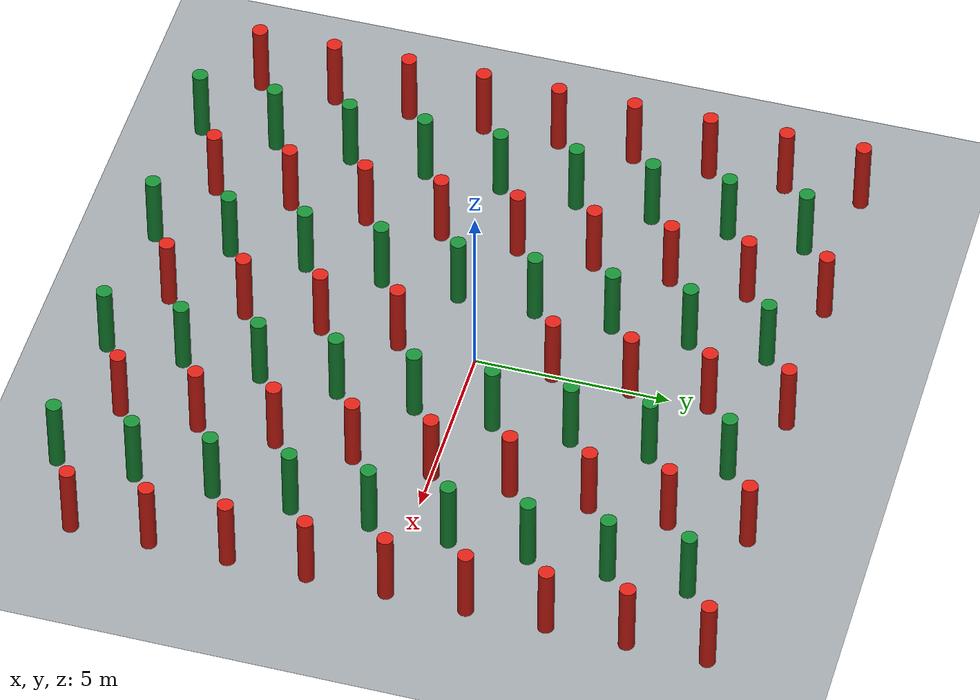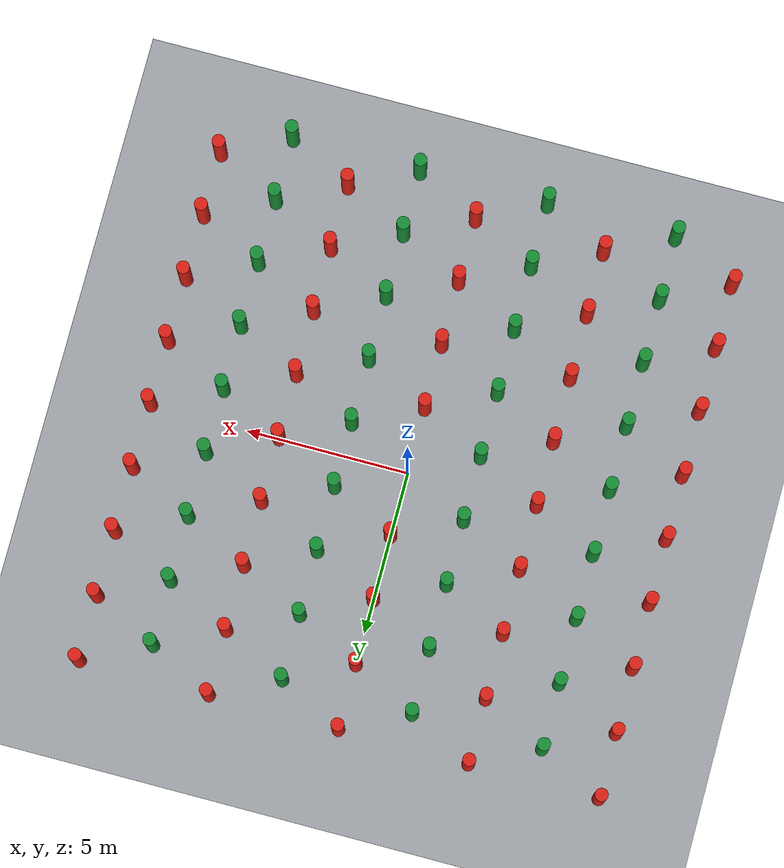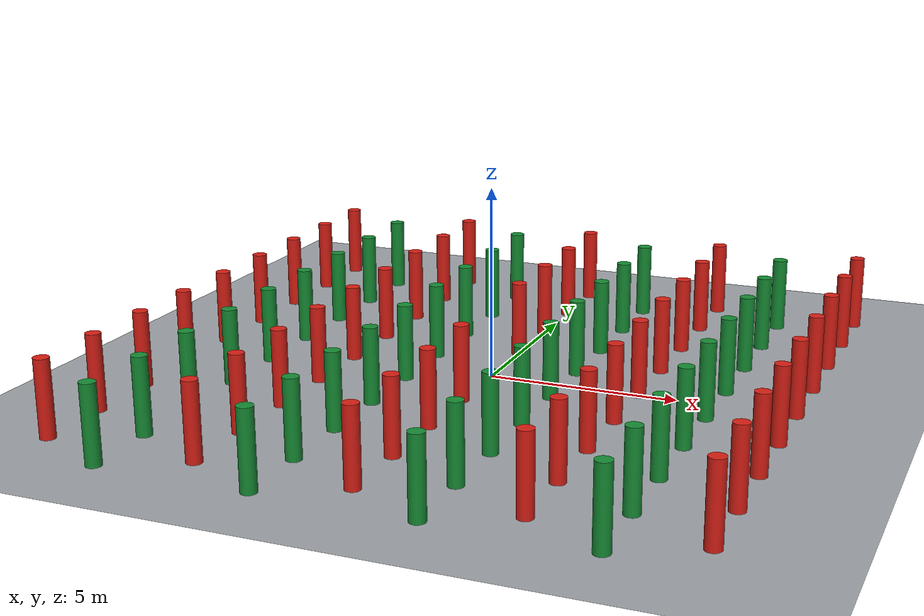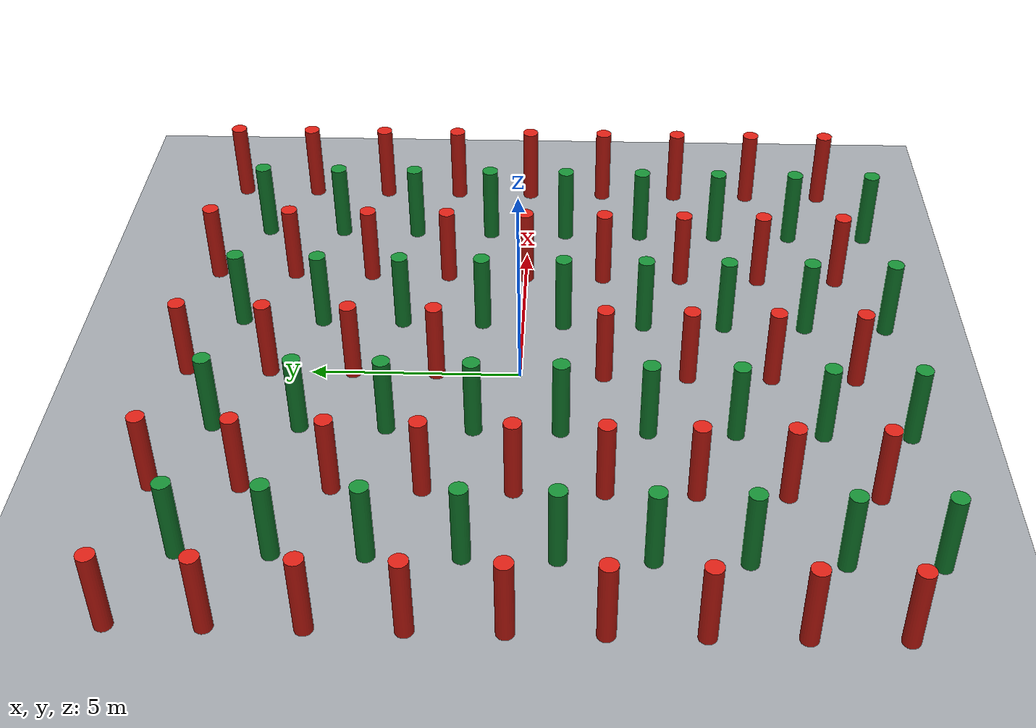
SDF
<sdf version="1.6">
 <world name="yunzong_planning_test_sunray150_assembled">
  <plugin filename="ignition-gazebo-physics-system" name="ignition::gazebo::systems::Physics"/>
  <plugin filename="ignition-gazebo-user-commands-system" name="ignition::gazebo::systems::UserCommands"/>
  <plugin filename="ignition-gazebo-scene-broadcaster-system" name="ignition::gazebo::systems::SceneBroadcaster"/>
  <plugin filename="ignition-gazebo-sensors-system" name="ignition::gazebo::systems::Sensors">
   <render_engine>ogre</render_engine>
  </plugin>
  <plugin filename="ignition-gazebo-imu-system" name="ignition::gazebo::systems::Imu"/>
  <physics name="default_physics" type="ode">
   <gravity>0 0 -9.8066</gravity>
   <ode>
    <solver>
     <type>quick</type>
     <iters>10</iters>
     <sor>1.3</sor>
     <use_dynamic_moi_rescaling>0</use_dynamic_moi_rescaling>
    </solver>
    <constraints>
     <cfm>0.00001</cfm>
     <erp>0.2</erp>
     <contact_max_correcting_vel>1000</contact_max_correcting_vel>
     <contact_surface_layer>0.01</contact_surface_layer>
    </constraints>
   </ode>
   <max_step_size>0.004</max_step_size>
   <real_time_factor>1.0</real_time_factor>
   <real_time_update_rate>250</real_time_update_rate>
   <magnetic_field>6.0e-6 2.3e-5 -4.2e-5</magnetic_field>
  </physics>
  <light type="directional" name="sun">
   <cast_shadows>false</cast_shadows>
   <pose>0 0 100 0 0 0</pose>
   <diffuse>0.8 0.8 0.8 1</diffuse>
   <specular>0.9 0.9 0.9 1</specular>
   <attenuation>
    <range>1000</range>
    <constant>0.9</constant>
    <linear>0.01</linear>
    <quadratic>0.001</quadratic>
   </attenuation>
   <direction>0.2 0.2 -0.9</direction>
  </light>
  <scene><ambient>0.75 0.75 0.75 1</ambient><background>0.82 0.86 0.9 1</background><shadows>0</shadows></scene>
  <model name="review_ground_plane">
   <static>true</static>
   <link name="link">
    <collision name="collision">
     <geometry><plane><normal>0 0 1</normal><size>22 22</size></plane></geometry>
    </collision>
    <visual name="visual">
     <geometry><plane><normal>0 0 1</normal><size>22 22</size></plane></geometry>
     <material>
      <ambient>0.62 0.64 0.66 1</ambient>
      <diffuse>0.62 0.64 0.66 1</diffuse>
      <specular>0.05 0.05 0.05 1</specular>
     </material>
    </visual>
   </link>
  </model>
  <include>
   <uri>model://cylinder_20cm</uri>
   <name>cylinder_-8_-8</name>
   <pose>-8.0 -8.0 1.0 0 0 0</pose>
   <static>true</static>
  </include>
  <include>
   <uri>model://cylinder_20cm</uri>
   <name>cylinder_-8_-6</name>
   <pose>-8.0 -6.0 1.0 0 0 0</pose>
   <static>true</static>
  </include>
  <include>
   <uri>model://cylinder_20cm</uri>
   <name>cylinder_-8_-4</name>
   <pose>-8.0 -4.0 1.0 0 0 0</pose>
   <static>true</static>
  </include>
  <include>
   <uri>model://cylinder_20cm</uri>
   <name>cylinder_-8_-2</name>
   <pose>-8.0 -2.0 1.0 0 0 0</pose>
   <static>true</static>
  </include>
  <include>
   <uri>model://cylinder_20cm</uri>
   <name>cylinder_-8_0</name>
   <pose>-8.0 0.0 1.0 0 0 0</pose>
   <static>true</static>
  </include>
  <include>
   <uri>model://cylinder_20cm</uri>
   <name>cylinder_-8_2</name>
   <pose>-8.0 2.0 1.0 0 0 0</pose>
   <static>true</static>
  </include>
  <include>
   <uri>model://cylinder_20cm</uri>
   <name>cylinder_-8_4</name>
   <pose>-8.0 4.0 1.0 0 0 0</pose>
   <static>true</static>
  </include>
  <include>
   <uri>model://cylinder_20cm</uri>
   <name>cylinder_-8_6</name>
   <pose>-8.0 6.0 1.0 0 0 0</pose>
   <static>true</static>
  </include>
  <include>
   <uri>model://cylinder_20cm</uri>
   <name>cylinder_-8_8</name>
   <pose>-8.0 8.0 1.0 0 0 0</pose>
   <static>true</static>
  </include>
  <include>
   <uri>model://cylinder_20cm_green</uri>
   <name>cylinder_-6_-9</name>
   <pose>-6.0 -9.0 1.0 0 0 0</pose>
   <static>true</static>
  </include>
  <include>
   <uri>model://cylinder_20cm_green</uri>
   <name>cylinder_-6_-7</name>
   <pose>-6.0 -7.0 1.0 0 0 0</pose>
   <static>true</static>
  </include>
  <include>
   <uri>model://cylinder_20cm_green</uri>
   <name>cylinder_-6_-5</name>
   <pose>-6.0 -5.0 1.0 0 0 0</pose>
   <static>true</static>
  </include>
  <include>
   <uri>model://cylinder_20cm_green</uri>
   <name>cylinder_-6_-3</name>
   <pose>-6.0 -3.0 1.0 0 0 0</pose>
   <static>true</static>
  </include>
  <include>
   <uri>model://cylinder_20cm_green</uri>
   <name>cylinder_-6_-1</name>
   <pose>-6.0 -1.0 1.0 0 0 0</pose>
   <static>true</static>
  </include>
  <include>
   <uri>model://cylinder_20cm_green</uri>
   <name>cylinder_-6_1</name>
   <pose>-6.0 1.0 1.0 0 0 0</pose>
   <static>true</static>
  </include>
  <include>
   <uri>model://cylinder_20cm_green</uri>
   <name>cylinder_-6_3</name>
   <pose>-6.0 3.0 1.0 0 0 0</pose>
   <static>true</static>
  </include>
  <include>
   <uri>model://cylinder_20cm_green</uri>
   <name>cylinder_-6_5</name>
   <pose>-6.0 5.0 1.0 0 0 0</pose>
   <static>true</static>
  </include>
  <include>
   <uri>model://cylinder_20cm_green</uri>
   <name>cylinder_-6_7</name>
   <pose>-6.0 7.0 1.0 0 0 0</pose>
   <static>true</static>
  </include>
  <include>
   <uri>model://cylinder_20cm</uri>
   <name>cylinder_-4_-8</name>
   <pose>-4.0 -8.0 1.0 0 0 0</pose>
   <static>true</static>
  </include>
  <include>
   <uri>model://cylinder_20cm</uri>
   <name>cylinder_-4_-6</name>
   <pose>-4.0 -6.0 1.0 0 0 0</pose>
   <static>true</static>
  </include>
  <include>
   <uri>model://cylinder_20cm</uri>
   <name>cylinder_-4_-4</name>
   <pose>-4.0 -4.0 1.0 0 0 0</pose>
   <static>true</static>
  </include>
  <include>
   <uri>model://cylinder_20cm</uri>
   <name>cylinder_-4_-2</name>
   <pose>-4.0 -2.0 1.0 0 0 0</pose>
   <static>true</static>
  </include>
  <include>
   <uri>model://cylinder_20cm</uri>
   <name>cylinder_-4_0</name>
   <pose>-4.0 0.0 1.0 0 0 0</pose>
   <static>true</static>
  </include>
  <include>
   <uri>model://cylinder_20cm</uri>
   <name>cylinder_-4_2</name>
   <pose>-4.0 2.0 1.0 0 0 0</pose>
   <static>true</static>
  </include>
  <include>
   <uri>model://cylinder_20cm</uri>
   <name>cylinder_-4_4</name>
   <pose>-4.0 4.0 1.0 0 0 0</pose>
   <static>true</static>
  </include>
  <include>
   <uri>model://cylinder_20cm</uri>
   <name>cylinder_-4_6</name>
   <pose>-4.0 6.0 1.0 0 0 0</pose>
   <static>true</static>
  </include>
  <include>
   <uri>model://cylinder_20cm</uri>
   <name>cylinder_-4_8</name>
   <pose>-4.0 8.0 1.0 0 0 0</pose>
   <static>true</static>
  </include>
  <include>
   <uri>model://cylinder_20cm_green</uri>
   <name>cylinder_-2_-9</name>
   <pose>-2.0 -9.0 1.0 0 0 0</pose>
   <static>true</static>
  </include>
  <include>
   <uri>model://cylinder_20cm_green</uri>
   <name>cylinder_-2_-7</name>
   <pose>-2.0 -7.0 1.0 0 0 0</pose>
   <static>true</static>
  </include>
  <include>
   <uri>model://cylinder_20cm_green</uri>
   <name>cylinder_-2_-5</name>
   <pose>-2.0 -5.0 1.0 0 0 0</pose>
   <static>true</static>
  </include>
  <include>
   <uri>model://cylinder_20cm_green</uri>
   <name>cylinder_-2_-3</name>
   <pose>-2.0 -3.0 1.0 0 0 0</pose>
   <static>true</static>
  </include>
  <include>
   <uri>model://cylinder_20cm_green</uri>
   <name>cylinder_-2_-1</name>
   <pose>-2.0 -1.0 1.0 0 0 0</pose>
   <static>true</static>
  </include>
  <include>
   <uri>model://cylinder_20cm_green</uri>
   <name>cylinder_-2_1</name>
   <pose>-2.0 1.0 1.0 0 0 0</pose>
   <static>true</static>
  </include>
  <include>
   <uri>model://cylinder_20cm_green</uri>
   <name>cylinder_-2_3</name>
   <pose>-2.0 3.0 1.0 0 0 0</pose>
   <static>true</static>
  </include>
  <include>
   <uri>model://cylinder_20cm_green</uri>
   <name>cylinder_-2_5</name>
   <pose>-2.0 5.0 1.0 0 0 0</pose>
   <static>true</static>
  </include>
  <include>
   <uri>model://cylinder_20cm_green</uri>
   <name>cylinder_-2_7</name>
   <pose>-2.0 7.0 1.0 0 0 0</pose>
   <static>true</static>
  </include>
  <include>
   <uri>model://cylinder_20cm</uri>
   <name>cylinder_0_-8</name>
   <pose>0.0 -8.0 1.0 0 0 0</pose>
   <static>true</static>
  </include>
  <include>
   <uri>model://cylinder_20cm</uri>
   <name>cylinder_0_-6</name>
   <pose>0.0 -6.0 1.0 0 0 0</pose>
   <static>true</static>
  </include>
  <include>
   <uri>model://cylinder_20cm</uri>
   <name>cylinder_0_-4</name>
   <pose>0.0 -4.0 1.0 0 0 0</pose>
   <static>true</static>
  </include>
  <include>
   <uri>model://cylinder_20cm</uri>
   <name>cylinder_0_-2</name>
   <pose>0.0 -2.0 1.0 0 0 0</pose>
   <static>true</static>
  </include>
  <include>
   <uri>model://cylinder_20cm</uri>
   <name>cylinder_0_2</name>
   <pose>0.0 2.0 1.0 0 0 0</pose>
   <static>true</static>
  </include>
  <include>
   <uri>model://cylinder_20cm</uri>
   <name>cylinder_0_4</name>
   <pose>0.0 4.0 1.0 0 0 0</pose>
   <static>true</static>
  </include>
  <include>
   <uri>model://cylinder_20cm</uri>
   <name>cylinder_0_6</name>
   <pose>0.0 6.0 1.0 0 0 0</pose>
   <static>true</static>
  </include>
  <include>
   <uri>model://cylinder_20cm</uri>
   <name>cylinder_0_8</name>
   <pose>0.0 8.0 1.0 0 0 0</pose>
   <static>true</static>
  </include>
  <include>
   <uri>model://cylinder_20cm_green</uri>
   <name>cylinder_2_-9</name>
   <pose>2.0 -9.0 1.0 0 0 0</pose>
   <static>true</static>
  </include>
  <include>
   <uri>model://cylinder_20cm_green</uri>
   <name>cylinder_2_-7</name>
   <pose>2.0 -7.0 1.0 0 0 0</pose>
   <static>true</static>
  </include>
  <include>
   <uri>model://cylinder_20cm_green</uri>
   <name>cylinder_2_-5</name>
   <pose>2.0 -5.0 1.0 0 0 0</pose>
   <static>true</static>
  </include>
  <include>
   <uri>model://cylinder_20cm_green</uri>
   <name>cylinder_2_-3</name>
   <pose>2.0 -3.0 1.0 0 0 0</pose>
   <static>true</static>
  </include>
  <include>
   <uri>model://cylinder_20cm_green</uri>
   <name>cylinder_2_-1</name>
   <pose>2.0 -1.0 1.0 0 0 0</pose>
   <static>true</static>
  </include>
  <include>
   <uri>model://cylinder_20cm_green</uri>
   <name>cylinder_2_1</name>
   <pose>2.0 1.0 1.0 0 0 0</pose>
   <static>true</static>
  </include>
  <include>
   <uri>model://cylinder_20cm_green</uri>
   <name>cylinder_2_3</name>
   <pose>2.0 3.0 1.0 0 0 0</pose>
   <static>true</static>
  </include>
  <include>
   <uri>model://cylinder_20cm_green</uri>
   <name>cylinder_2_5</name>
   <pose>2.0 5.0 1.0 0 0 0</pose>
   <static>true</static>
  </include>
  <include>
   <uri>model://cylinder_20cm_green</uri>
   <name>cylinder_2_7</name>
   <pose>2.0 7.0 1.0 0 0 0</pose>
   <static>true</static>
  </include>
  <include>
   <uri>model://cylinder_20cm</uri>
   <name>cylinder_4_-8</name>
   <pose>4.0 -8.0 1.0 0 0 0</pose>
   <static>true</static>
  </include>
  <include>
   <uri>model://cylinder_20cm</uri>
   <name>cylinder_4_-6</name>
   <pose>4.0 -6.0 1.0 0 0 0</pose>
   <static>true</static>
  </include>
  <include>
   <uri>model://cylinder_20cm</uri>
   <name>cylinder_4_-4</name>
   <pose>4.0 -4.0 1.0 0 0 0</pose>
   <static>true</static>
  </include>
  <include>
   <uri>model://cylinder_20cm</uri>
   <name>cylinder_4_-2</name>
   <pose>4.0 -2.0 1.0 0 0 0</pose>
   <static>true</static>
  </include>
  <include>
   <uri>model://cylinder_20cm</uri>
   <name>cylinder_4_0</name>
   <pose>4.0 0.0 1.0 0 0 0</pose>
   <static>true</static>
  </include>
  <include>
   <uri>model://cylinder_20cm</uri>
   <name>cylinder_4_2</name>
   <pose>4.0 2.0 1.0 0 0 0</pose>
   <static>true</static>
  </include>
  <include>
   <uri>model://cylinder_20cm</uri>
   <name>cylinder_4_4</name>
   <pose>4.0 4.0 1.0 0 0 0</pose>
   <static>true</static>
  </include>
  <include>
   <uri>model://cylinder_20cm</uri>
   <name>cylinder_4_6</name>
   <pose>4.0 6.0 1.0 0 0 0</pose>
   <static>true</static>
  </include>
  <include>
   <uri>model://cylinder_20cm</uri>
   <name>cylinder_4_8</name>
   <pose>4.0 8.0 1.0 0 0 0</pose>
   <static>true</static>
  </include>
  <include>
   <uri>model://cylinder_20cm_green</uri>
   <name>cylinder_6_-9</name>
   <pose>6.0 -9.0 1.0 0 0 0</pose>
   <static>true</static>
  </include>
  <include>
   <uri>model://cylinder_20cm_green</uri>
   <name>cylinder_6_-7</name>
   <pose>6.0 -7.0 1.0 0 0 0</pose>
   <static>true</static>
  </include>
  <include>
   <uri>model://cylinder_20cm_green</uri>
   <name>cylinder_6_-5</name>
   <pose>6.0 -5.0 1.0 0 0 0</pose>
   <static>true</static>
  </include>
  <include>
   <uri>model://cylinder_20cm_green</uri>
   <name>cylinder_6_-3</name>
   <pose>6.0 -3.0 1.0 0 0 0</pose>
   <static>true</static>
  </include>
  <include>
   <uri>model://cylinder_20cm_green</uri>
   <name>cylinder_6_-1</name>
   <pose>6.0 -1.0 1.0 0 0 0</pose>
   <static>true</static>
  </include>
  <include>
   <uri>model://cylinder_20cm_green</uri>
   <name>cylinder_6_1</name>
   <pose>6.0 1.0 1.0 0 0 0</pose>
   <static>true</static>
  </include>
  <include>
   <uri>model://cylinder_20cm_green</uri>
   <name>cylinder_6_3</name>
   <pose>6.0 3.0 1.0 0 0 0</pose>
   <static>true</static>
  </include>
  <include>
   <uri>model://cylinder_20cm_green</uri>
   <name>cylinder_6_5</name>
   <pose>6.0 5.0 1.0 0 0 0</pose>
   <static>true</static>
  </include>
  <include>
   <uri>model://cylinder_20cm_green</uri>
   <name>cylinder_6_7</name>
   <pose>6.0 7.0 1.0 0 0 0</pose>
   <static>true</static>
  </include>
  <include>
   <uri>model://cylinder_20cm</uri>
   <name>cylinder_8_-8</name>
   <pose>8.0 -8.0 1.0 0 0 0</pose>
   <static>true</static>
  </include>
  <include>
   <uri>model://cylinder_20cm</uri>
   <name>cylinder_8_-6</name>
   <pose>8.0 -6.0 1.0 0 0 0</pose>
   <static>true</static>
  </include>
  <include>
   <uri>model://cylinder_20cm</uri>
   <name>cylinder_8_-4</name>
   <pose>8.0 -4.0 1.0 0 0 0</pose>
   <static>true</static>
  </include>
  <include>
   <uri>model://cylinder_20cm</uri>
   <name>cylinder_8_-2</name>
   <pose>8.0 -2.0 1.0 0 0 0</pose>
   <static>true</static>
  </include>
  <include>
   <uri>model://cylinder_20cm</uri>
   <name>cylinder_8_0</name>
   <pose>8.0 0.0 1.0 0 0 0</pose>
   <static>true</static>
  </include>
  <include>
   <uri>model://cylinder_20cm</uri>
   <name>cylinder_8_2</name>
   <pose>8.0 2.0 1.0 0 0 0</pose>
   <static>true</static>
  </include>
  <include>
   <uri>model://cylinder_20cm</uri>
   <name>cylinder_8_4</name>
   <pose>8.0 4.0 1.0 0 0 0</pose>
   <static>true</static>
  </include>
  <include>
   <uri>model://cylinder_20cm</uri>
   <name>cylinder_8_6</name>
   <pose>8.0 6.0 1.0 0 0 0</pose>
   <static>true</static>
  </include>
  <include>
   <uri>model://cylinder_20cm</uri>
   <name>cylinder_8_8</name>
   <pose>8.0 8.0 1.0 0 0 0</pose>
   <static>true</static>
  </include>
 </world>
</sdf>

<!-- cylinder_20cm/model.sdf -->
<sdf version="1.7">
  <model name="cylinder_20cm">
    <static>true</static>
    <link name="link">
      <visual name="visual">
        <geometry>
          <cylinder>
            <radius>0.2</radius>
            <length>2</length>
          </cylinder>
        </geometry>
        <material>
          <ambient>0.85 0.12 0.08 1</ambient>
          <diffuse>0.85 0.12 0.08 1</diffuse>
          <specular>0.08 0.08 0.08 1</specular>
        </material>
      </visual>
      <collision name="collision">
        <geometry>
          <cylinder>
            <radius>0.2</radius>
            <length>2</length>
          </cylinder>
        </geometry>
      </collision>
      <inertial>
        <mass>1</mass>
        <inertia>
          <ixx>0.3358</ixx>
          <ixy>0</ixy>
          <ixz>0</ixz>
          <iyy>0.3358</iyy>
          <iyz>0</iyz>
          <izz>0.005</izz>
        </inertia>
      </inertial>
    </link>
  </model>
</sdf>

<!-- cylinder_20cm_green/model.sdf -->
<sdf version="1.7">
  <model name="cylinder_20cm_green">
    <static>true</static>
    <link name="link">
      <visual name="visual">
        <geometry>
          <cylinder>
            <radius>0.2</radius>
            <length>2</length>
          </cylinder>
        </geometry>
        <material>
          <ambient>0.08 0.55 0.2 1</ambient>
          <diffuse>0.08 0.55 0.2 1</diffuse>
          <specular>0.08 0.08 0.08 1</specular>
        </material>
      </visual>
      <collision name="collision">
        <geometry>
          <cylinder>
            <radius>0.2</radius>
            <length>2</length>
          </cylinder>
        </geometry>
      </collision>
      <inertial>
        <mass>1</mass>
        <inertia>
          <ixx>0.3358</ixx>
          <ixy>0</ixy>
          <ixz>0</ixz>
          <iyy>0.3358</iyy>
          <iyz>0</iyz>
          <izz>0.005</izz>
        </inertia>
      </inertial>
    </link>
  </model>
</sdf>
